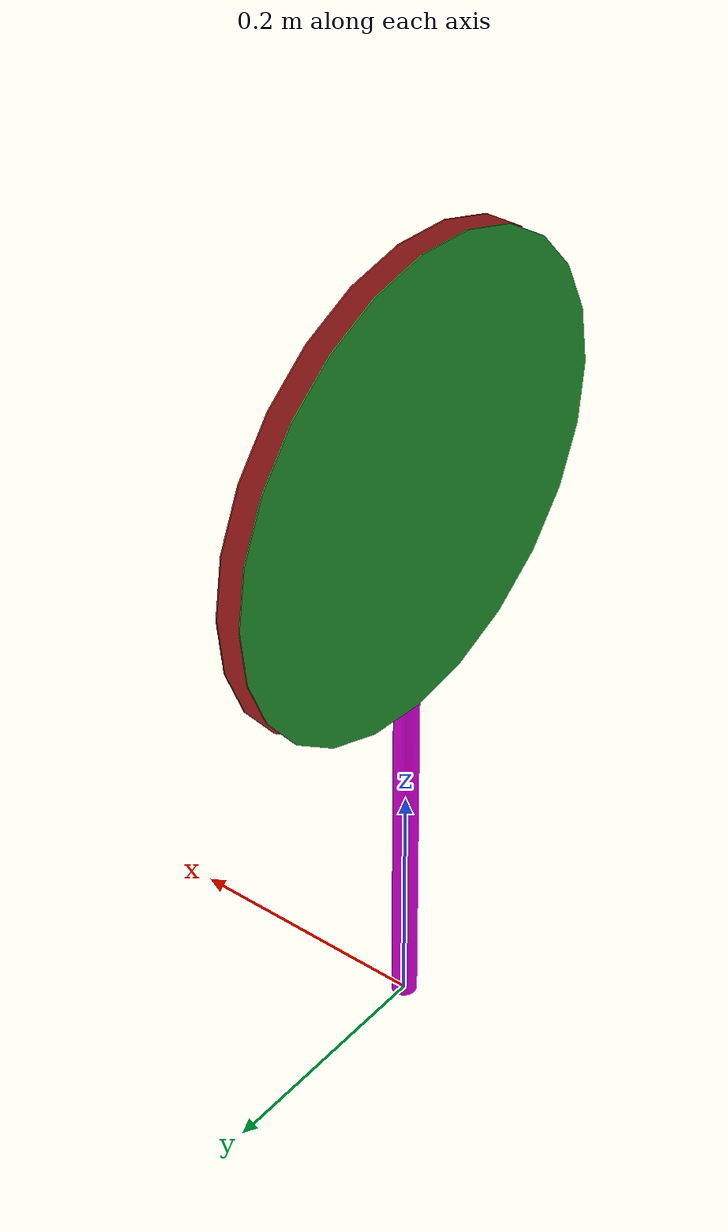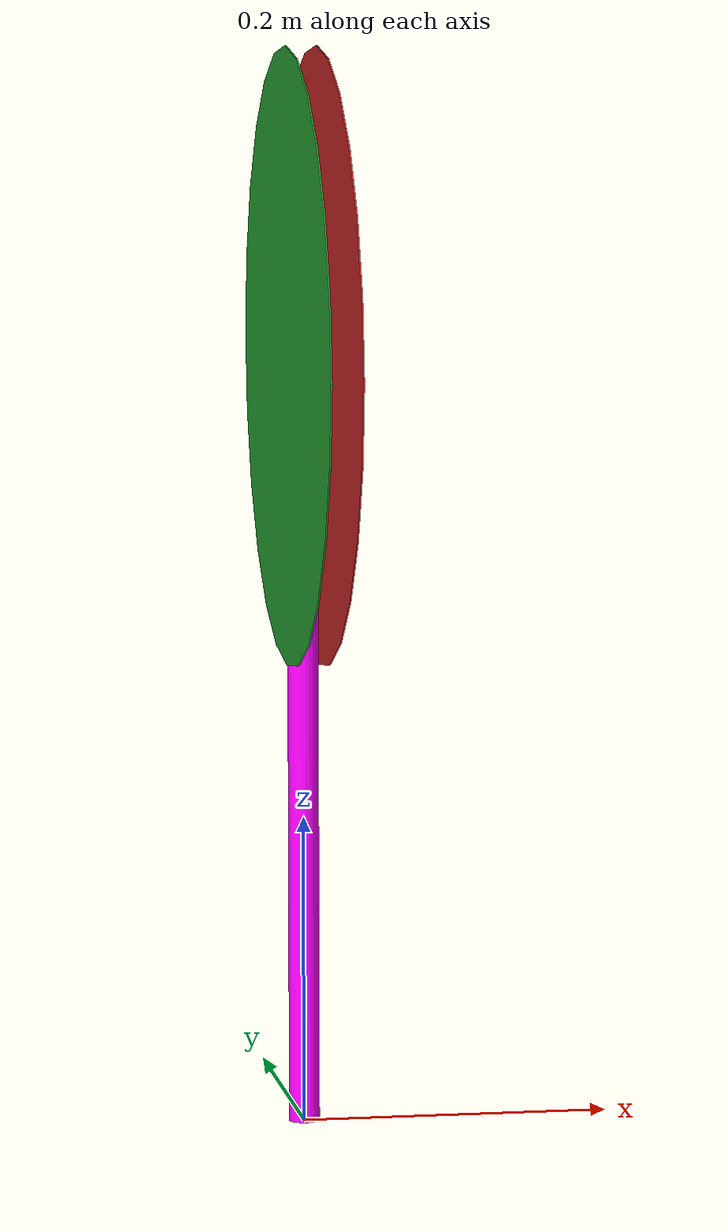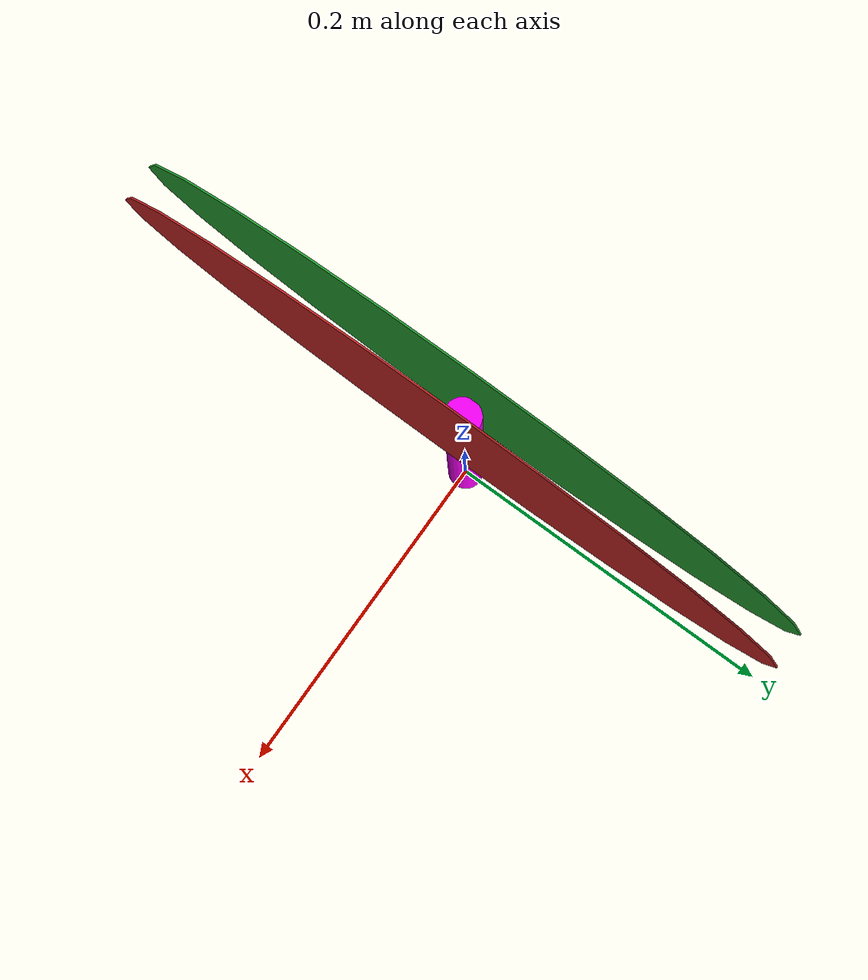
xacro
<?xml version="1.0"?>
<robot name="stoplight" xmlns:xacro="http://www.ros.org/wiki/xacro">

<xacro:arg name="light_ns" default="undefinedNS"/>
<xacro:property name="light_ns" value="$(arg light_ns)"/>

<xacro:arg name="scale" default="1.0"/>
<xacro:property name="scale" value="$(arg scale)"/>

<xacro:property name="pole_height" value="${0.5*scale}" />
<xacro:property name="sign_radius" value="${0.2*scale}" />

<link name="world" />
<joint name="fixed" type="fixed">
    <parent link="world"/>
    <child link="base_link"/>
</joint>

<link name="base_link">
    <visual>
        <origin xyz="0 0 ${pole_height/2.0}" rpy="0 0 0" />
        <geometry>
            <cylinder radius="0.01" length="${pole_height}"/>
        </geometry>
        <material name="Black">
            <color rgba="1 0.0 1 1.0"/>
        </material>
    </visual>
    <inertial>
      <origin xyz="0 0 0" rpy="0 0 0"/>
      <mass value="10000"/>
      <inertia
        ixx="10000.0" ixy="0.0" ixz="0.0"
        iyy="10000.0" iyz="0.0"
        izz="10000.0"/>
    </inertial>
</link>

<joint name="light_joint" type="revolute">
    <origin xyz="0 0 ${pole_height}" rpy="0 0 0"/>
    <parent link="base_link"/>
    <child link="light_link"/>
    <axis xyz="0 0 1" />
    <limit effort="100" velocity="100" lower="-6.3" upper="3.3"/>
</joint>

<transmission name="light_joint_transmission" type="SimpleTransmission">
  <type>transmission_interface/SimpleTransmission</type>
  <joint name="light_joint">
    <hardwareInterface>hardware_interface/PositionJointInterface</hardwareInterface>
  </joint>
  <actuator name="light_joint_motor">
    <hardwareInterface>hardware_interface/PositionJointInterface</hardwareInterface>
    <mechanicalReduction>1</mechanicalReduction>
  </actuator>
</transmission>

<link name="light_link">
    <inertial>
      <origin xyz="0 0 0" rpy="0 0 0"/>
      <mass value="10"/>
      <inertia
        ixx="1.0" ixy="0.0" ixz="0.0"
        iyy="1.0" iyz="0.0"
        izz="1.0"/>
    </inertial>
</link>

<joint name="red_light_joint" type="fixed">
    <origin xyz="0.01 0 0" rpy="0 1.5707 0"/>
    <parent link="light_link"/>
    <child link="red_light_link"/>
</joint>

<link name="red_light_link">
    <visual>
        <origin xyz="0 0 0" rpy="0 0 0" />
        <geometry>
            <cylinder radius="${sign_radius}" length="0.001"/>
        </geometry>
    </visual>
    <inertial>
      <origin xyz="0 0 0" rpy="0 0 0"/>
      <mass value="1"/>
      <inertia
        ixx="1.0" ixy="0.0" ixz="0.0"
        iyy="1.0" iyz="0.0"
        izz="1.0"/>
    </inertial>
</link>

<joint name="green_light_joint" type="fixed">
    <origin xyz="-0.01 0 0" rpy="0 1.5707 0"/>
    <parent link="light_link"/>
    <child link="green_light_link"/>
</joint>

<link name="green_light_link">
    <visual>
        <origin xyz="0 0 0" rpy="0 0 0" />
        <geometry>
            <cylinder radius="${sign_radius}" length="0.001"/>
        </geometry>
    </visual>
    <inertial>
      <origin xyz="0 0 0" rpy="0 0 0"/>
      <mass value="1"/>
      <inertia
        ixx="1.0" ixy="0.0" ixz="0.0"
        iyy="1.0" iyz="0.0"
        izz="1.0"/>
    </inertial>
</link>

<gazebo reference="base_link">
    <material>Gazebo/Black</material>
    <static>true</static>
</gazebo>

<gazebo reference="red_light_link">
    <material>Gazebo/Red</material>
</gazebo>

<gazebo reference="green_light_link">
    <material>Gazebo/Green</material>
</gazebo>

<gazebo>
  <plugin name="gazebo_ros_control" filename="libgazebo_ros_control.so">
    <robotNamespace>${light_ns}</robotNamespace>
    <legacyModeNS>false</legacyModeNS>
  </plugin>
</gazebo>

</robot>
